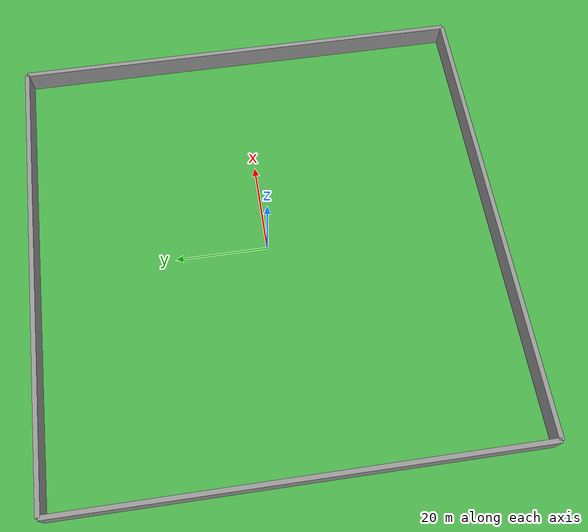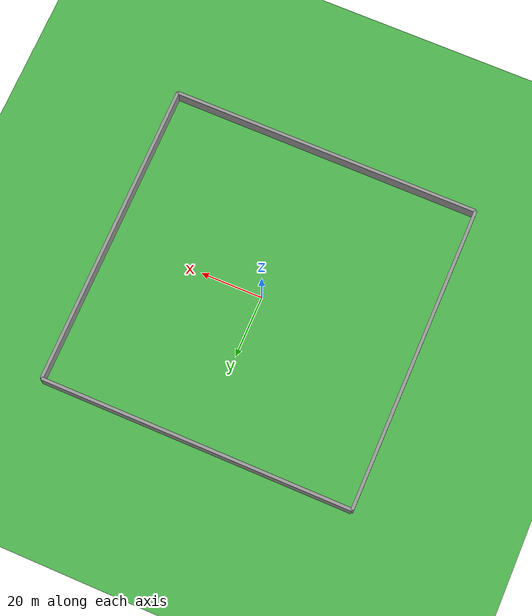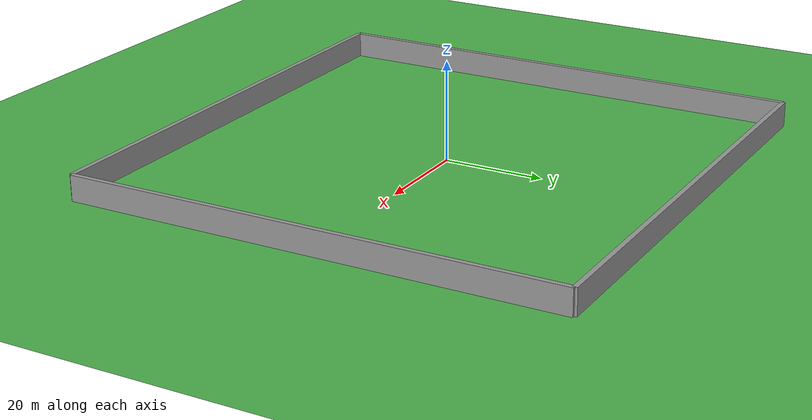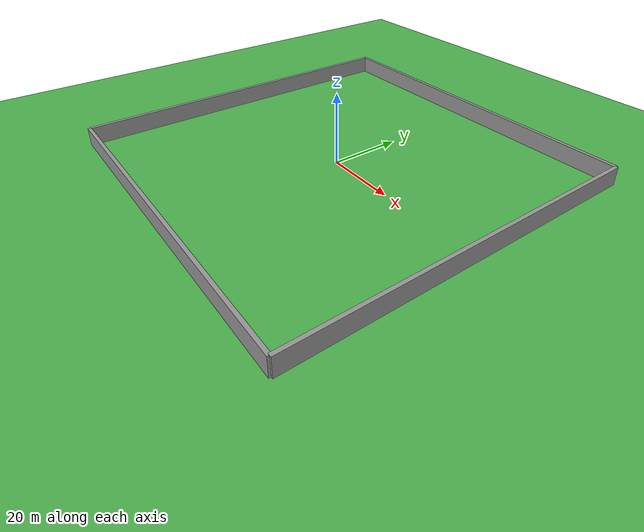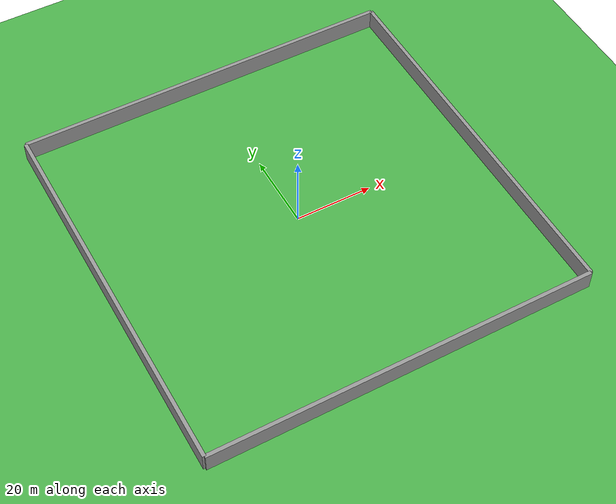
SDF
<sdf version='1.10'>
  <world name='empty'>
    <physics name='1ms' type='ignored'>
      <max_step_size>0.001</max_step_size>
      <real_time_factor>1</real_time_factor>
      <real_time_update_rate>1000</real_time_update_rate>
    </physics>
    <plugin name='gz::sim::systems::Physics' filename='gz-sim-physics-system'/>
    <plugin name='gz::sim::systems::UserCommands' filename='gz-sim-user-commands-system'/>
    <plugin name='gz::sim::systems::SceneBroadcaster' filename='gz-sim-scene-broadcaster-system'/>
    <plugin name='gz::sim::systems::Contact' filename='gz-sim-contact-system'/>
    <plugin name='gz::sim::systems::Sensors' filename='gz-sim-sensors-system'>
      <render_engine>ogre2</render_engine>
    </plugin>
    <gravity>0 0 -9.8000000000000007</gravity>
    <magnetic_field>5.5644999999999998e-06 2.2875799999999999e-05 -4.2388400000000002e-05</magnetic_field>
    <atmosphere type='adiabatic'/>
    <scene>
      <ambient>0.400000006 0.400000006 0.400000006 1</ambient>
      <background>0.699999988 0.699999988 0.699999988 1</background>
      <shadows>true</shadows>
    </scene>
    <model name='ground_plane'>
      <static>true</static>
      <link name='link'>
        <collision name='collision'>
          <geometry>
            <plane>
              <normal>0 0 1</normal>
              <size>100 100</size>
            </plane>
          </geometry>
          <surface>
            <friction>
              <ode/>
            </friction>
            <bounce/>
            <contact/>
          </surface>
        </collision>
        <visual name='visual'>
          <geometry>
            <plane>
              <normal>0 0 1</normal>
              <size>100 100</size>
            </plane>
          </geometry>
          <material>
            <ambient>0.200000003 0.5 0.200000003 1</ambient>
            <diffuse>0.300000012 0.699999988 0.300000012 1</diffuse>
            <specular>0.100000001 0.200000003 0.100000001 1</specular>
          </material>
        </visual>
        <pose>0 0 0 0 0 0</pose>
        <inertial>
          <pose>0 0 0 0 0 0</pose>
          <mass>1</mass>
          <inertia>
            <ixx>1</ixx>
            <ixy>0</ixy>
            <ixz>0</ixz>
            <iyy>1</iyy>
            <iyz>0</iyz>
            <izz>1</izz>
          </inertia>
        </inertial>
        <enable_wind>false</enable_wind>
      </link>
      <pose>0 0 0 0 0 0</pose>
      <self_collide>false</self_collide>
    </model>
    <model name='north_wall'>
      <static>true</static>
      <link name='link'>
        <collision name='collision'>
          <geometry>
            <box>
              <size>100 1 8</size>
            </box>
          </geometry>
          <surface>
            <friction>
              <ode/>
            </friction>
            <bounce/>
            <contact/>
          </surface>
        </collision>
        <visual name='visual'>
          <geometry>
            <box>
              <size>100 1 8</size>
            </box>
          </geometry>
          <material>
            <ambient>0.600000024 0.600000024 0.600000024 1</ambient>
            <diffuse>0.600000024 0.600000024 0.600000024 1</diffuse>
          </material>
        </visual>
        <pose>0 0 0 0 0 0</pose>
        <inertial>
          <pose>0 0 0 0 0 0</pose>
          <mass>1</mass>
          <inertia>
            <ixx>1</ixx>
            <ixy>0</ixy>
            <ixz>0</ixz>
            <iyy>1</iyy>
            <iyz>0</iyz>
            <izz>1</izz>
          </inertia>
        </inertial>
        <enable_wind>false</enable_wind>
      </link>
      <pose>0 50 1 0 0 0</pose>
      <self_collide>false</self_collide>
    </model>
    <model name='south_wall'>
      <static>true</static>
      <link name='link'>
        <collision name='collision'>
          <geometry>
            <box>
              <size>100 1 8</size>
            </box>
          </geometry>
          <surface>
            <friction>
              <ode/>
            </friction>
            <bounce/>
            <contact/>
          </surface>
        </collision>
        <visual name='visual'>
          <geometry>
            <box>
              <size>100 1 8</size>
            </box>
          </geometry>
          <material>
            <ambient>0.600000024 0.600000024 0.600000024 1</ambient>
            <diffuse>0.600000024 0.600000024 0.600000024 1</diffuse>
          </material>
        </visual>
        <pose>0 0 0 0 0 0</pose>
        <inertial>
          <pose>0 0 0 0 0 0</pose>
          <mass>1</mass>
          <inertia>
            <ixx>1</ixx>
            <ixy>0</ixy>
            <ixz>0</ixz>
            <iyy>1</iyy>
            <iyz>0</iyz>
            <izz>1</izz>
          </inertia>
        </inertial>
        <enable_wind>false</enable_wind>
      </link>
      <pose>0 -50 1 0 0 0</pose>
      <self_collide>false</self_collide>
    </model>
    <model name='east_wall'>
      <static>true</static>
      <link name='link'>
        <collision name='collision'>
          <geometry>
            <box>
              <size>1 100 8</size>
            </box>
          </geometry>
          <surface>
            <friction>
              <ode/>
            </friction>
            <bounce/>
            <contact/>
          </surface>
        </collision>
        <visual name='visual'>
          <geometry>
            <box>
              <size>1 100 8</size>
            </box>
          </geometry>
          <material>
            <ambient>0.600000024 0.600000024 0.600000024 1</ambient>
            <diffuse>0.600000024 0.600000024 0.600000024 1</diffuse>
          </material>
        </visual>
        <pose>0 0 0 0 0 0</pose>
        <inertial>
          <pose>0 0 0 0 0 0</pose>
          <mass>1</mass>
          <inertia>
            <ixx>1</ixx>
            <ixy>0</ixy>
            <ixz>0</ixz>
            <iyy>1</iyy>
            <iyz>0</iyz>
            <izz>1</izz>
          </inertia>
        </inertial>
        <enable_wind>false</enable_wind>
      </link>
      <pose>50 0 1 0 0 0</pose>
      <self_collide>false</self_collide>
    </model>
    <model name='west_wall'>
      <static>true</static>
      <link name='link'>
        <collision name='collision'>
          <geometry>
            <box>
              <size>1 100 8</size>
            </box>
          </geometry>
          <surface>
            <friction>
              <ode/>
            </friction>
            <bounce/>
            <contact/>
          </surface>
        </collision>
        <visual name='visual'>
          <geometry>
            <box>
              <size>1 100 8</size>
            </box>
          </geometry>
          <material>
            <ambient>0.600000024 0.600000024 0.600000024 1</ambient>
            <diffuse>0.600000024 0.600000024 0.600000024 1</diffuse>
          </material>
        </visual>
        <pose>0 0 0 0 0 0</pose>
        <inertial>
          <pose>0 0 0 0 0 0</pose>
          <mass>1</mass>
          <inertia>
            <ixx>1</ixx>
            <ixy>0</ixy>
            <ixz>0</ixz>
            <iyy>1</iyy>
            <iyz>0</iyz>
            <izz>1</izz>
          </inertia>
        </inertial>
        <enable_wind>false</enable_wind>
      </link>
      <pose>-50 0 1 0 0 0</pose>
      <self_collide>false</self_collide>
    </model>
    <light name='sun' type='directional'>
      <pose>0 0 10 0 0 0</pose>
      <cast_shadows>true</cast_shadows>
      <intensity>1</intensity>
      <direction>-0.5 0.10000000000000001 -0.90000000000000002</direction>
      <diffuse>0.800000012 0.800000012 0.800000012 1</diffuse>
      <specular>0.200000003 0.200000003 0.200000003 1</specular>
      <attenuation>
        <range>1000</range>
        <linear>0.01</linear>
        <constant>0.90000000000000002</constant>
        <quadratic>0.001</quadratic>
      </attenuation>
      <spot>
        <inner_angle>0</inner_angle>
        <outer_angle>0</outer_angle>
        <falloff>0</falloff>
      </spot>
    </light>
  </world>
</sdf>
